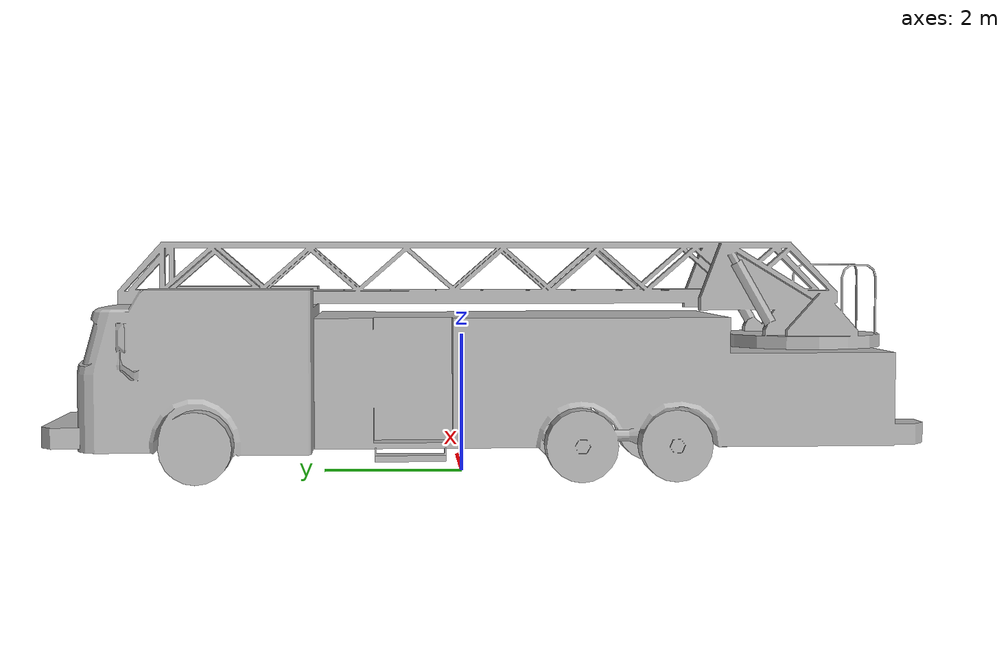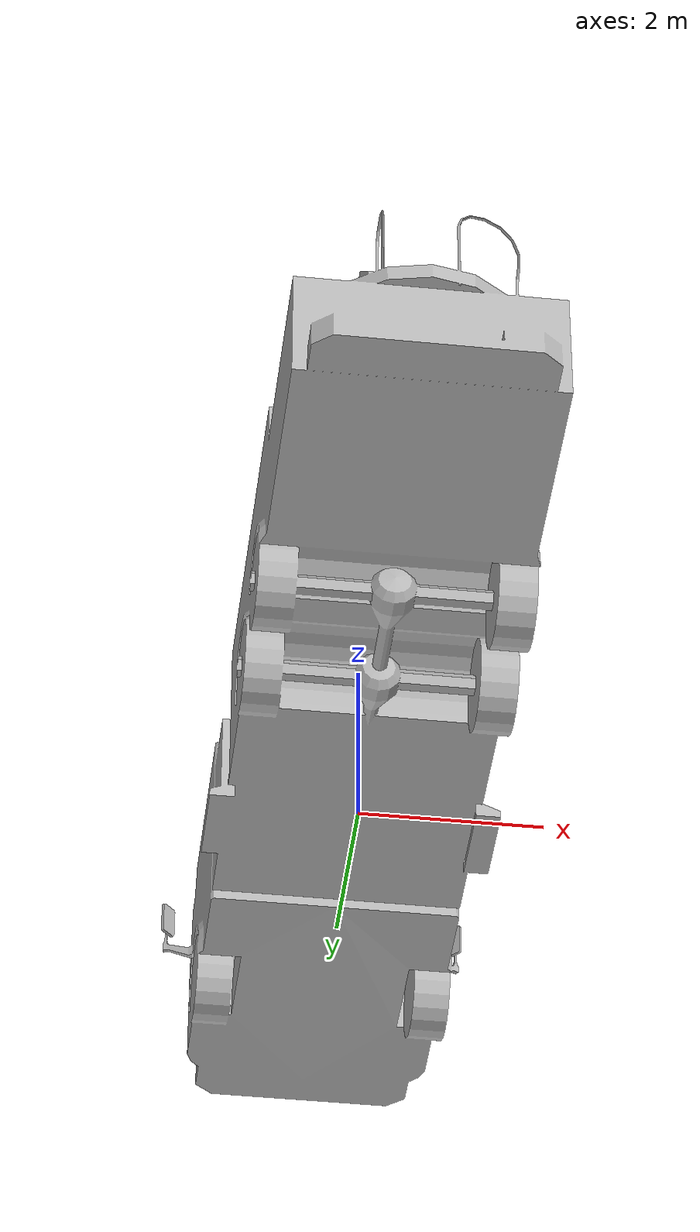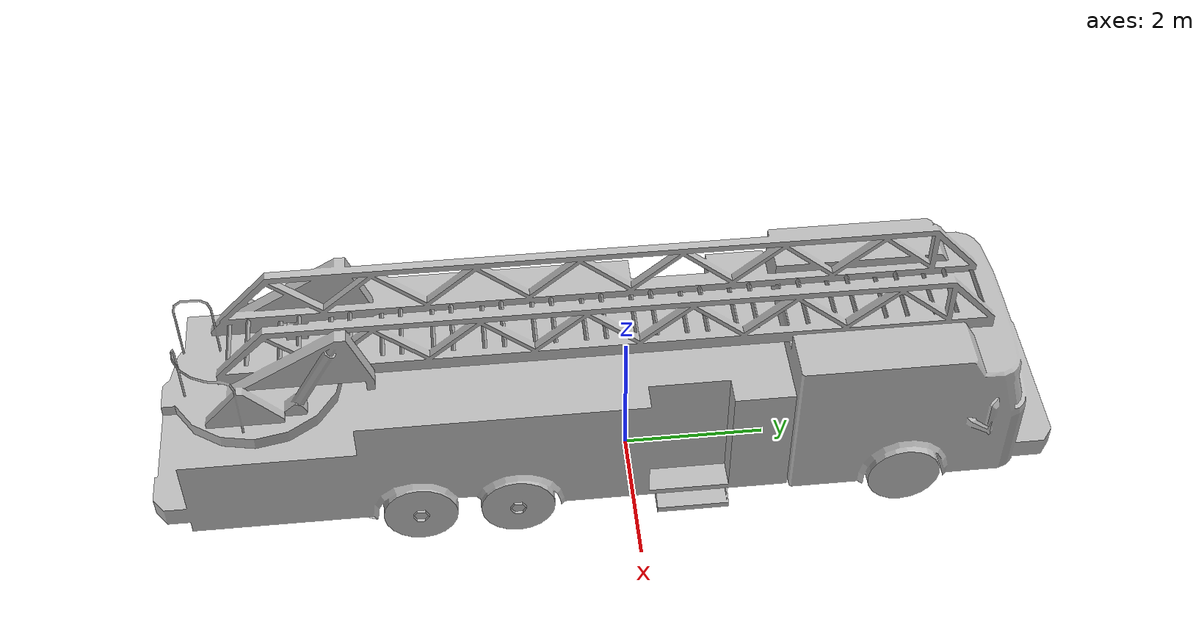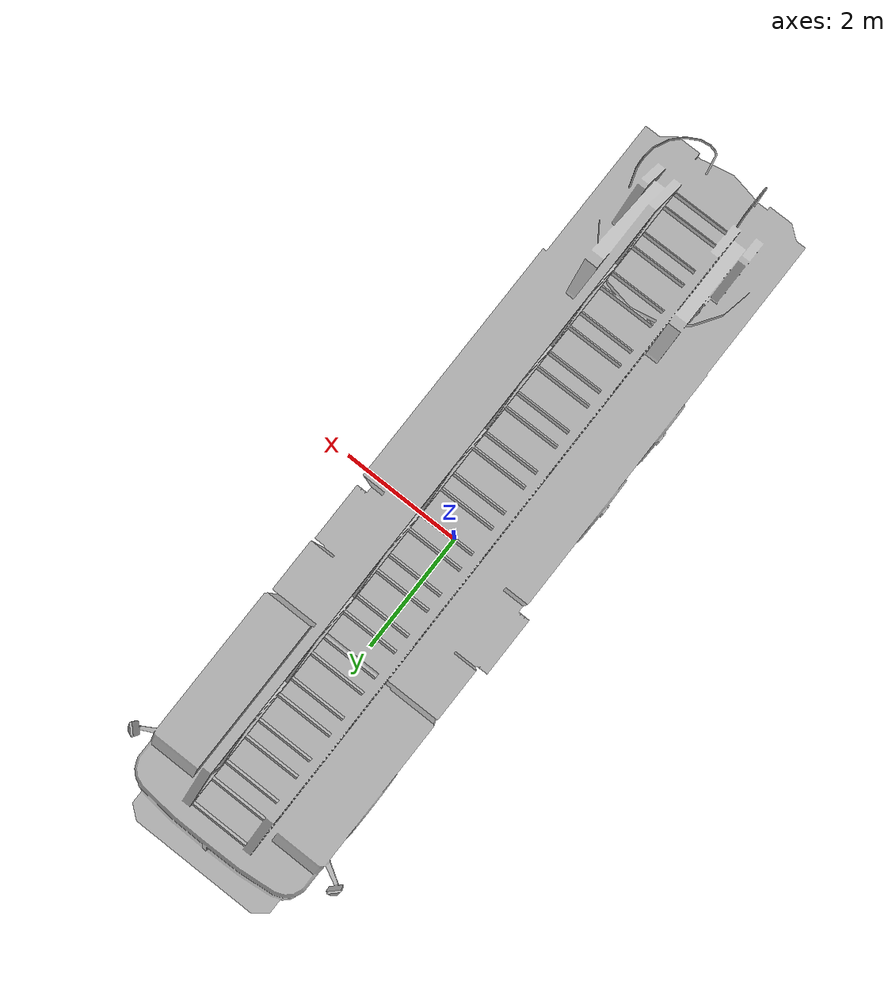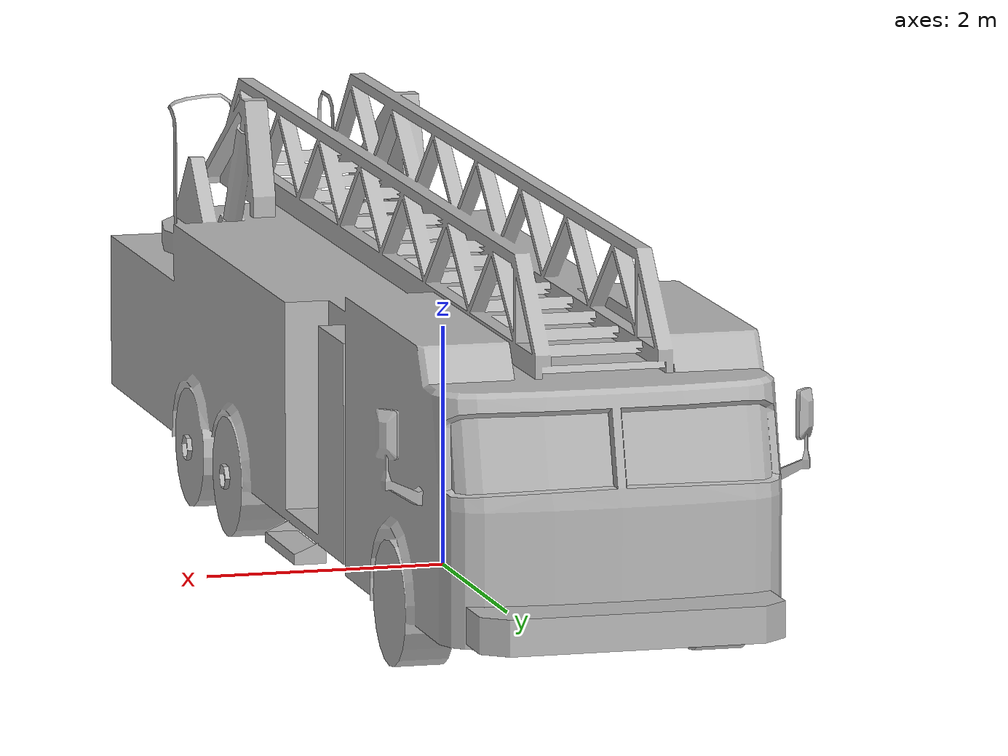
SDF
<?xml version="1.0" ?>
<sdf version="1.6">
  <model name="fire_truck_tagged_3x">
    <static>true</static>
    <link name="link">
      <collision name="collision">
        <geometry>
          <mesh>
            <scale>0.1 0.1 0.1</scale>
            <uri>model://fire_truck_tagged_3x/meshes/fire_truck_tagged_3x.obj</uri>
          </mesh>
        </geometry>
      </collision>
      <visual name="visual">
        <geometry>
          <mesh>
            <scale>0.1 0.1 0.1</scale>
            <uri>model://fire_truck_tagged_3x/meshes/fire_truck_tagged_3x.obj</uri>
          </mesh>
        </geometry>
      </visual>
    </link>
  </model>
</sdf>
